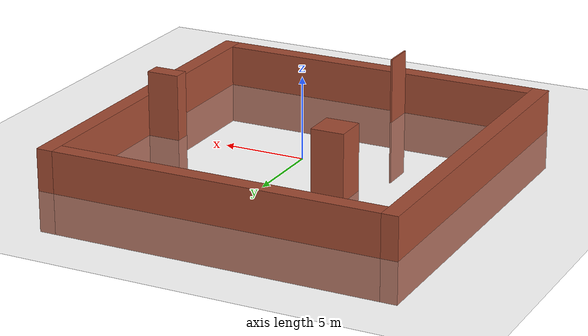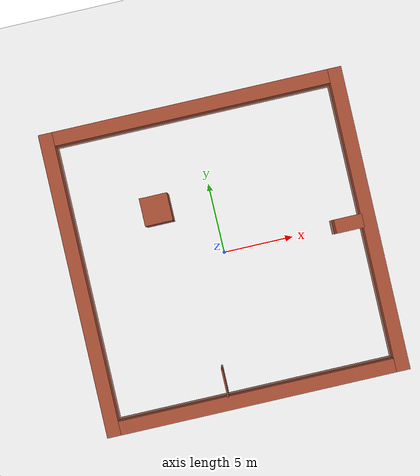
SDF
<sdf version="1.5">
 <world name="default">
  <scene>
   <ambient>0.4 0.4 0.4 1</ambient>
   <background>0.25 0.25 0.25 1</background>
   <shadows>false</shadows>
  </scene>
  <light type="directional" name="some_light">
   <diffuse>0.7 0.7 0.7 0</diffuse>
   <specular>1 1 1 0</specular>
   <direction>-1 -1 -1</direction>
  </light>
  <include><uri>model://ground_plane</uri></include>
  <model name="v1">
   <pose>0 10.5 0 0 0 0</pose>
   <static>true</static>
   <link name="link">
    <inertial>
     <mass>500.0</mass>
     <inertia>
      <ixx>0.51875</ixx>
      <ixy>0.0</ixy>
      <ixz>0.0</ixz>
      <iyy>0.083</iyy>
      <iyz>0.0</iyz>
      <izz>0.083</izz>
     </inertia>
    </inertial>
    <collision name="collision"><geometry><box><size>20 1 8</size></box></geometry></collision>
    <visual name="visual">
     <geometry><box><size>20 1 5</size></box></geometry>
     <material>
      <script><uri>file://media/material/scripts/gazebo.material</uri><name>Gazebo/Bricks</name></script>
     </material>
    </visual>
   </link>
  </model>
  <model name="v2">
   <pose>0 -10.5 0 0 0 0</pose>
   <static>true</static>
   <link name="link">
    <inertial>
     <mass>500.0</mass>
     <inertia>
      <ixx>0.51875</ixx>
      <ixy>0.0</ixy>
      <ixz>0.0</ixz>
      <iyy>0.083</iyy>
      <iyz>0.0</iyz>
      <izz>0.083</izz>
     </inertia>
    </inertial>
    <collision name="collision"><geometry><box><size>20 1 8</size></box></geometry></collision>
    <visual name="visual">
     <geometry><box><size>20 1 5</size></box></geometry>
     <material>
      <script><uri>file://media/material/scripts/gazebo.material</uri><name>Gazebo/Bricks</name></script>
     </material>
    </visual>
   </link>
  </model>
  <model name="h1">
   <pose>10.5 0 0 0 0 1.5708</pose>
   <static>true</static>
   <link name="link">
    <inertial>
     <mass>500.0</mass>
     <inertia>
      <ixx>0.51875</ixx>
      <ixy>0.0</ixy>
      <ixz>0.0</ixz>
      <iyy>0.083</iyy>
      <iyz>0.0</iyz>
      <izz>0.083</izz>
     </inertia>
    </inertial>
    <collision name="collision"><geometry><box><size>22 1 8</size></box></geometry></collision>
    <visual name="visual">
     <geometry><box><size>22 1 5</size></box></geometry>
     <material>
      <script><uri>file://media/material/scripts/gazebo.material</uri><name>Gazebo/Bricks</name></script>
     </material>
    </visual>
   </link>
  </model>
  <model name="h2">
   <pose>-10.5 0 0 0 0 1.5708</pose>
   <static>true</static>
   <link name="link">
    <inertial>
     <mass>500.0</mass>
     <inertia>
      <ixx>0.51875</ixx>
      <ixy>0.0</ixy>
      <ixz>0.0</ixz>
      <iyy>0.083</iyy>
      <iyz>0.0</iyz>
      <izz>0.083</izz>
     </inertia>
    </inertial>
    <collision name="collision"><geometry><box><size>22 1 8</size></box></geometry></collision>
    <visual name="visual">
     <geometry><box><size>22 1 5</size></box></geometry>
     <material>
      <script><uri>file://media/material/scripts/gazebo.material</uri><name>Gazebo/Bricks</name></script>
     </material>
    </visual>
   </link>
  </model>
  <model name="obj1">
   <pose>-2 -9 0 0 0 1.5708</pose>
   <static>true</static>
   <link name="link">
    <inertial>
     <mass>500.0</mass>
     <inertia>
      <ixx>0.51875</ixx>
      <ixy>0.0</ixy>
      <ixz>0.0</ixz>
      <iyy>0.083</iyy>
      <iyz>0.0</iyz>
      <izz>0.083</izz>
     </inertia>
    </inertial>
    <collision name="collision"><geometry><box><size>2 0.1 8</size></box></geometry></collision>
    <visual name="visual">
     <geometry><box><size>2 0.1 8</size></box></geometry>
     <material>
      <script><uri>file://media/material/scripts/gazebo.material</uri><name>Gazebo/Bricks</name></script>
     </material>
    </visual>
   </link>
  </model>
  <model name="obj2">
   <pose>9 0 0 0 0 0</pose>
   <static>true</static>
   <link name="link">
    <inertial>
     <mass>500.0</mass>
     <inertia>
      <ixx>0.51875</ixx>
      <ixy>0.0</ixy>
      <ixz>0.0</ixz>
      <iyy>0.083</iyy>
      <iyz>0.0</iyz>
      <izz>0.083</izz>
     </inertia>
    </inertial>
    <collision name="collision"><geometry><box><size>2 1 8</size></box></geometry></collision>
    <visual name="visual">
     <geometry><box><size>2 1 8</size></box></geometry>
     <material>
      <script><uri>file://media/material/scripts/gazebo.material</uri><name>Gazebo/Bricks</name></script>
     </material>
    </visual>
   </link>
  </model>
  <model name="obj3">
   <pose>-4 4 0 0 0 0</pose>
   <static>true</static>
   <link name="link">
    <inertial>
     <mass>500.0</mass>
     <inertia>
      <ixx>0.51875</ixx>
      <ixy>0.0</ixy>
      <ixz>0.0</ixz>
      <iyy>0.083</iyy>
      <iyz>0.0</iyz>
      <izz>0.083</izz>
     </inertia>
    </inertial>
    <collision name="collision"><geometry><box><size>2 2 8</size></box></geometry></collision>
    <visual name="visual">
     <geometry><box><size>2 2 8</size></box></geometry>
     <material>
      <script><uri>file://media/material/scripts/gazebo.material</uri><name>Gazebo/Bricks</name></script>
     </material>
    </visual>
   </link>
  </model>
 </world>
</sdf>
